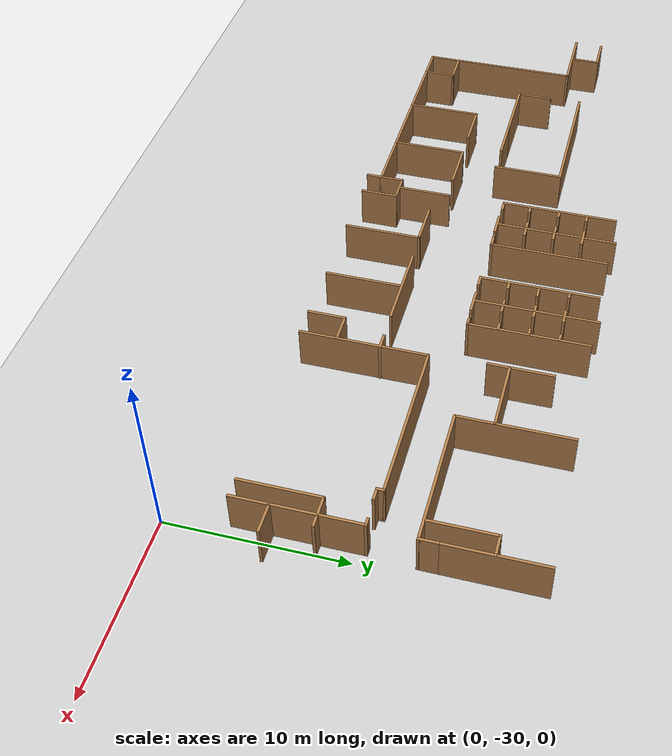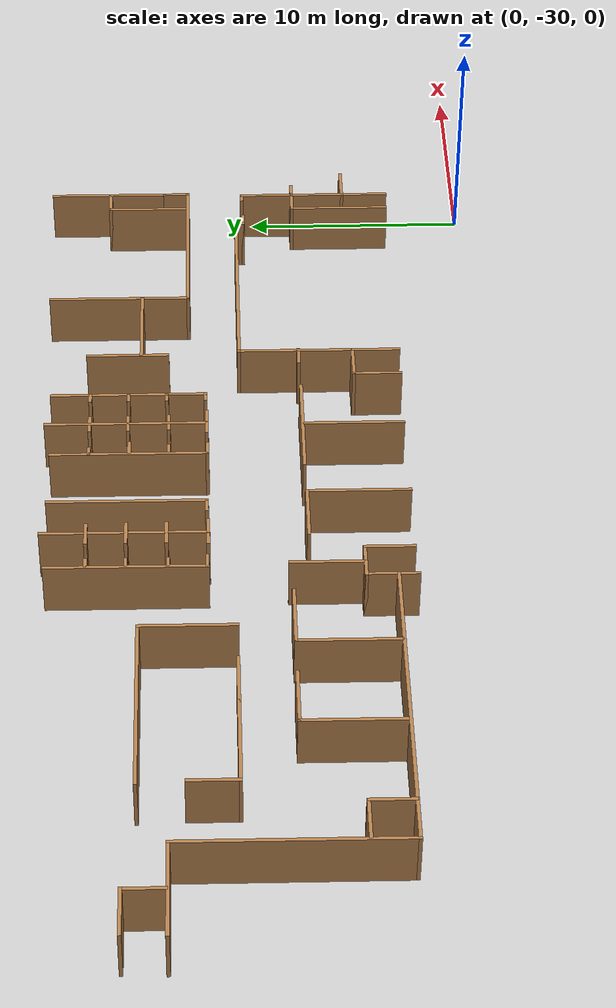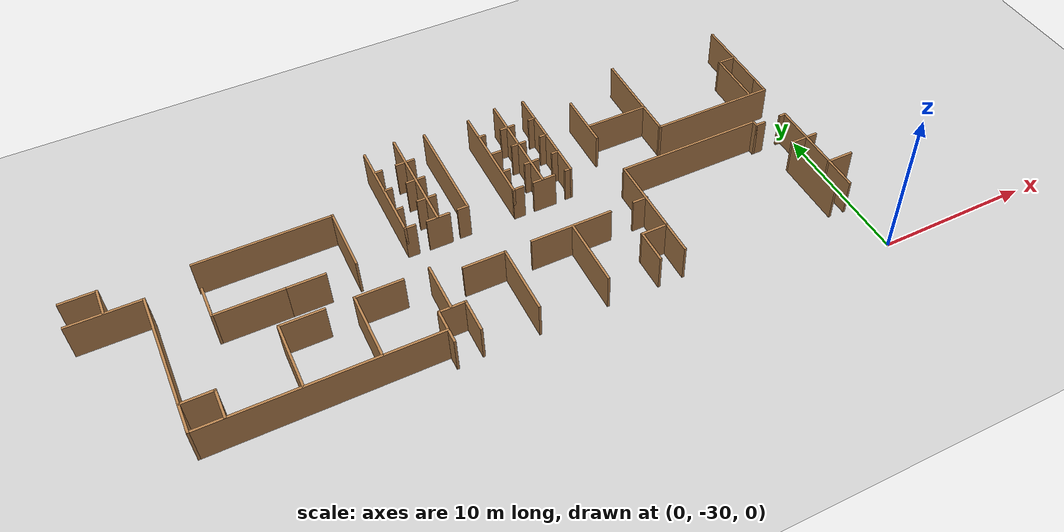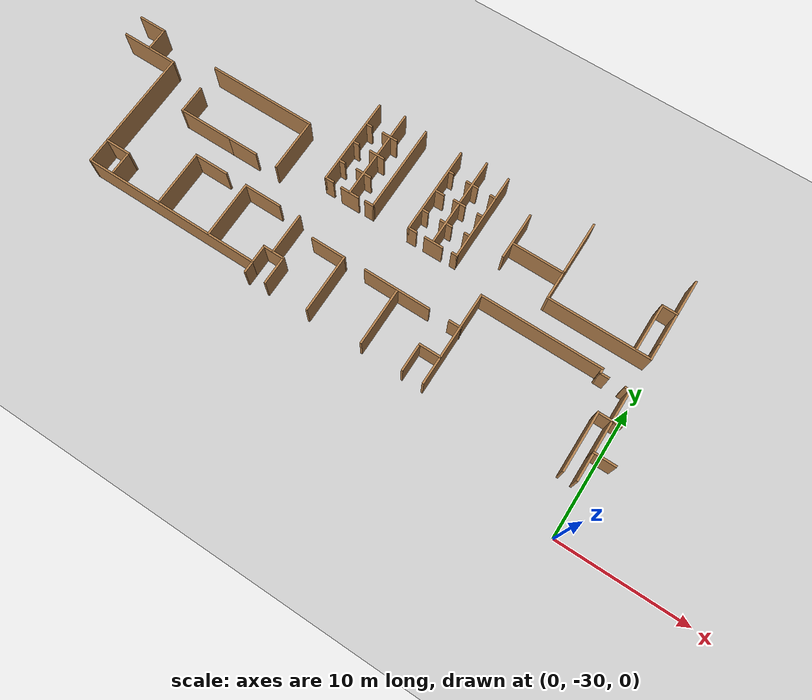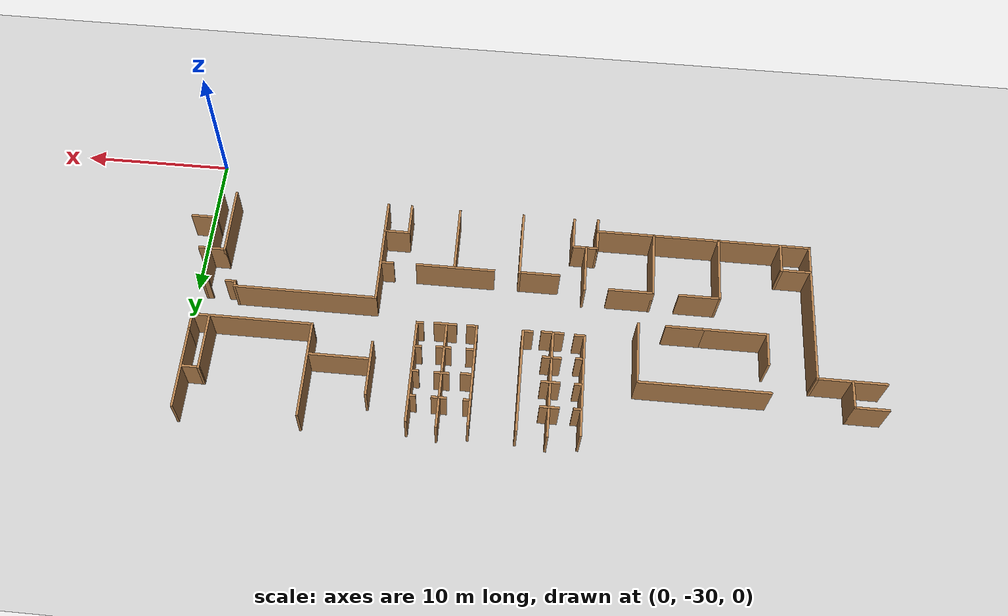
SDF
<sdf version="1.6">
 <world name="default">
  <model name="ground_plane">
   <static>1</static>
   <link name="link">
    <collision name="collision">
     <geometry><plane><normal>0 0 1</normal><size>100 100</size></plane></geometry>
     <surface><friction><ode><mu>100</mu><mu2>50</mu2></ode></friction></surface>
    </collision>
    <visual name="visual">
     <cast_shadows>0</cast_shadows>
     <geometry><plane><normal>0 0 1</normal><size>100 100</size></plane></geometry>
     <material>
      <script><uri>file://media/materials/scripts/gazebo.material</uri><name>Gazebo/Grey</name></script>
     </material>
    </visual>
   </link>
  </model>
  <model name="floor_plan">
   <link name="Wall_22">
    <collision name="Wall_22_Collision">
     <geometry><box><size>1 0.15 2.5</size></box></geometry>
     <pose>0 0 1.25 0 -0 0</pose>
    </collision>
    <visual name="Wall_22_Visual">
     <pose>0 0 1.25 0 -0 0</pose>
     <geometry><box><size>1 0.15 2.5</size></box></geometry>
     <material>
      <script><uri>file://media/materials/scripts/gazebo.material</uri><name>Gazebo/Wood</name></script>
      <ambient>1 1 1 1</ambient>
     </material>
    </visual>
    <pose>-26.55 -26.0536 0 0 -0 1.5708</pose>
   </link>
   <link name="Wall_23">
    <collision name="Wall_23_Collision">
     <geometry><box><size>14.25 0.15 2.5</size></box></geometry>
     <pose>0 0 1.25 0 -0 0</pose>
    </collision>
    <visual name="Wall_23_Visual">
     <pose>0 0 1.25 0 -0 0</pose>
     <geometry><box><size>14.25 0.15 2.5</size></box></geometry>
     <material>
      <script><uri>file://media/materials/scripts/gazebo.material</uri><name>Gazebo/Wood</name></script>
      <ambient>1 1 1 1</ambient>
     </material>
    </visual>
    <pose>-33.6 -25.6286 0 0 -0 3.14159</pose>
   </link>
   <link name="Wall_24">
    <collision name="Wall_24_Collision">
     <geometry><box><size>9.75 0.15 2.5</size></box></geometry>
     <pose>0 0 1.25 0 -0 0</pose>
    </collision>
    <visual name="Wall_24_Visual">
     <pose>0 0 1.25 0 -0 0</pose>
     <geometry><box><size>9.75 0.15 2.5</size></box></geometry>
     <material>
      <script><uri>file://media/materials/scripts/gazebo.material</uri><name>Gazebo/Wood</name></script>
      <ambient>1 1 1 1</ambient>
     </material>
    </visual>
    <pose>-40.65 -20.8286 0 0 -0 1.5708</pose>
   </link>
   <link name="Wall_25">
    <collision name="Wall_25_Collision">
     <geometry><box><size>4.5 0.15 2.5</size></box></geometry>
     <pose>0 0 1.25 0 -0 0</pose>
    </collision>
    <visual name="Wall_25_Visual">
     <pose>0 0 1.25 0 -0 0</pose>
     <geometry><box><size>4.5 0.15 2.5</size></box></geometry>
     <material>
      <script><uri>file://media/materials/scripts/gazebo.material</uri><name>Gazebo/Wood</name></script>
      <ambient>1 1 1 1</ambient>
     </material>
    </visual>
    <pose>-42.825 -16.0286 0 0 -0 3.14159</pose>
   </link>
   <link name="Wall_308">
    <collision name="Wall_308_Collision">
     <geometry><box><size>1.75 0.15 2.5</size></box></geometry>
     <pose>0 0 1.25 0 -0 0</pose>
    </collision>
    <visual name="Wall_308_Visual">
     <pose>0 0 1.25 0 -0 0</pose>
     <geometry><box><size>1.75 0.15 2.5</size></box></geometry>
     <material>
      <script><uri>file://media/materials/scripts/gazebo.material</uri><name>Gazebo/Wood</name></script>
      <ambient>1 1 1 1</ambient>
     </material>
    </visual>
    <pose>0.097617 -24.3355 0 0 -0 3.14159</pose>
   </link>
   <link name="Wall_309">
    <collision name="Wall_309_Collision">
     <geometry><box><size>2.25 0.15 2.5</size></box></geometry>
     <pose>0 0 1.25 0 -0 0</pose>
    </collision>
    <visual name="Wall_309_Visual">
     <pose>0 0 1.25 0 -0 0</pose>
     <geometry><box><size>2.25 0.15 2.5</size></box></geometry>
     <material>
      <script><uri>file://media/materials/scripts/gazebo.material</uri><name>Gazebo/Wood</name></script>
      <ambient>1 1 1 1</ambient>
     </material>
    </visual>
    <pose>-0.702384 -25.3855 0 0 0 -1.5708</pose>
   </link>
   <link name="Wall_311">
    <collision name="Wall_311_Collision">
     <geometry><box><size>5 0.15 2.5</size></box></geometry>
     <pose>0 0 1.25 0 -0 0</pose>
    </collision>
    <visual name="Wall_311_Visual">
     <pose>0 0 1.25 0 -0 0</pose>
     <geometry><box><size>5 0.15 2.5</size></box></geometry>
     <material>
      <script><uri>file://media/materials/scripts/gazebo.material</uri><name>Gazebo/Wood</name></script>
      <ambient>1 1 1 1</ambient>
     </material>
    </visual>
    <pose>-0.702384 -21.9105 0 0 -0 1.5708</pose>
   </link>
   <link name="Wall_312">
    <collision name="Wall_312_Collision">
     <geometry><box><size>0.5 0.15 2.5</size></box></geometry>
     <pose>0 0 1.25 0 -0 0</pose>
    </collision>
    <visual name="Wall_312_Visual">
     <pose>0 0 1.25 0 -0 0</pose>
     <geometry><box><size>0.5 0.15 2.5</size></box></geometry>
     <material>
      <script><uri>file://media/materials/scripts/gazebo.material</uri><name>Gazebo/Wood</name></script>
      <ambient>1 1 1 1</ambient>
     </material>
    </visual>
    <pose>-0.877383 -19.4855 0 0 -0 3.14159</pose>
   </link>
   <link name="Wall_314">
    <collision name="Wall_314_Collision">
     <geometry><box><size>0.75 0.15 2.5</size></box></geometry>
     <pose>0 0 1.25 0 -0 0</pose>
    </collision>
    <visual name="Wall_314_Visual">
     <pose>0 0 1.25 0 -0 0</pose>
     <geometry><box><size>0.75 0.15 2.5</size></box></geometry>
     <material>
      <script><uri>file://media/materials/scripts/gazebo.material</uri><name>Gazebo/Wood</name></script>
      <ambient>1 1 1 1</ambient>
     </material>
    </visual>
    <pose>-2.59679 -19.5326 0 0 -0 3.14159</pose>
   </link>
   <link name="Wall_315">
    <collision name="Wall_315_Collision">
     <geometry><box><size>0.5 0.15 2.5</size></box></geometry>
     <pose>0 0 1.25 0 -0 0</pose>
    </collision>
    <visual name="Wall_315_Visual">
     <pose>0 0 1.25 0 -0 0</pose>
     <geometry><box><size>0.5 0.15 2.5</size></box></geometry>
     <material>
      <script><uri>file://media/materials/scripts/gazebo.material</uri><name>Gazebo/Wood</name></script>
      <ambient>1 1 1 1</ambient>
     </material>
    </visual>
    <pose>-2.89679 -19.3576 0 0 -0 1.5708</pose>
   </link>
   <link name="Wall_316">
    <collision name="Wall_316_Collision">
     <geometry><box><size>9.5 0.15 2.5</size></box></geometry>
     <pose>0 0 1.25 0 -0 0</pose>
    </collision>
    <visual name="Wall_316_Visual">
     <pose>0 0 1.25 0 -0 0</pose>
     <geometry><box><size>9.5 0.15 2.5</size></box></geometry>
     <material>
      <script><uri>file://media/materials/scripts/gazebo.material</uri><name>Gazebo/Wood</name></script>
      <ambient>1 1 1 1</ambient>
     </material>
    </visual>
    <pose>-7.57179 -19.1826 0 0 -0 3.14159</pose>
   </link>
   <link name="Wall_317">
    <collision name="Wall_317_Collision">
     <geometry><box><size>7.4 0.15 2.5</size></box></geometry>
     <pose>0 0 1.25 0 -0 0</pose>
    </collision>
    <visual name="Wall_317_Visual">
     <pose>0 0 1.25 0 -0 0</pose>
     <geometry><box><size>7.4 0.15 2.5</size></box></geometry>
     <material>
      <script><uri>file://media/materials/scripts/gazebo.material</uri><name>Gazebo/Wood</name></script>
      <ambient>1 1 1 1</ambient>
     </material>
    </visual>
    <pose>-12.2468 -22.8076 0 0 0 -1.5708</pose>
   </link>
   <link name="Wall_319">
    <collision name="Wall_319_Collision">
     <geometry><box><size>0.75 0.15 2.5</size></box></geometry>
     <pose>0 0 1.25 0 -0 0</pose>
    </collision>
    <visual name="Wall_319_Visual">
     <pose>0 0 1.25 0 -0 0</pose>
     <geometry><box><size>0.75 0.15 2.5</size></box></geometry>
     <material>
      <script><uri>file://media/materials/scripts/gazebo.material</uri><name>Gazebo/Wood</name></script>
      <ambient>1 1 1 1</ambient>
     </material>
    </visual>
    <pose>-0.344509 -21.9009 0 0 -0 0</pose>
   </link>
   <link name="Wall_321">
    <collision name="Wall_321_Collision">
     <geometry><box><size>1.75 0.15 2.5</size></box></geometry>
     <pose>0 0 1.25 0 -0 0</pose>
    </collision>
    <visual name="Wall_321_Visual">
     <pose>0 0 1.25 0 -0 0</pose>
     <geometry><box><size>1.75 0.15 2.5</size></box></geometry>
     <material>
      <script><uri>file://media/materials/scripts/gazebo.material</uri><name>Gazebo/Wood</name></script>
      <ambient>1 1 1 1</ambient>
     </material>
    </visual>
    <pose>-13.0655 -24.3426 0 0 -0 3.14159</pose>
   </link>
   <link name="Wall_322">
    <collision name="Wall_322_Collision">
     <geometry><box><size>2.25 0.15 2.5</size></box></geometry>
     <pose>0 0 1.25 0 -0 0</pose>
    </collision>
    <visual name="Wall_322_Visual">
     <pose>0 0 1.25 0 -0 0</pose>
     <geometry><box><size>2.25 0.15 2.5</size></box></geometry>
     <material>
      <script><uri>file://media/materials/scripts/gazebo.material</uri><name>Gazebo/Wood</name></script>
      <ambient>1 1 1 1</ambient>
     </material>
    </visual>
    <pose>-13.8655 -25.3926 0 0 0 -1.5708</pose>
   </link>
   <link name="Wall_324">
    <collision name="Wall_324_Collision">
     <geometry><box><size>1 0.15 2.5</size></box></geometry>
     <pose>0 0 1.25 0 -0 0</pose>
    </collision>
    <visual name="Wall_324_Visual">
     <pose>0 0 1.25 0 -0 0</pose>
     <geometry><box><size>1 0.15 2.5</size></box></geometry>
     <material>
      <script><uri>file://media/materials/scripts/gazebo.material</uri><name>Gazebo/Wood</name></script>
      <ambient>1 1 1 1</ambient>
     </material>
    </visual>
    <pose>-12.6354 -21.8825 0 0 -0 3.14159</pose>
   </link>
   <link name="Wall_326">
    <collision name="Wall_326_Collision">
     <geometry><box><size>5.25 0.15 2.5</size></box></geometry>
     <pose>0 0 1.25 0 -0 0</pose>
    </collision>
    <visual name="Wall_326_Visual">
     <pose>0 0 1.25 0 -0 0</pose>
     <geometry><box><size>5.25 0.15 2.5</size></box></geometry>
     <material>
      <script><uri>file://media/materials/scripts/gazebo.material</uri><name>Gazebo/Wood</name></script>
      <ambient>1 1 1 1</ambient>
     </material>
    </visual>
    <pose>-17.2389 -21.9193 0 0 -0 3.14159</pose>
   </link>
   <link name="Wall_330">
    <collision name="Wall_330_Collision">
     <geometry><box><size>4.5 0.15 2.5</size></box></geometry>
     <pose>0 0 1.25 0 -0 0</pose>
    </collision>
    <visual name="Wall_330_Visual">
     <pose>0 0 1.25 0 -0 0</pose>
     <geometry><box><size>4.5 0.15 2.5</size></box></geometry>
     <material>
      <script><uri>file://media/materials/scripts/gazebo.material</uri><name>Gazebo/Wood</name></script>
      <ambient>1 1 1 1</ambient>
     </material>
    </visual>
    <pose>-17.1673 -24.191 0 0 0 -1.5708</pose>
   </link>
   <link name="Wall_334">
    <collision name="Wall_334_Collision">
     <geometry><box><size>4.6 0.15 2.5</size></box></geometry>
     <pose>0 0 1.25 0 -0 0</pose>
    </collision>
    <visual name="Wall_334_Visual">
     <pose>0 0 1.25 0 -0 0</pose>
     <geometry><box><size>4.6 0.15 2.5</size></box></geometry>
     <material>
      <script><uri>file://media/materials/scripts/gazebo.material</uri><name>Gazebo/Wood</name></script>
      <ambient>1 1 1 1</ambient>
     </material>
    </visual>
    <pose>-21.4986 -24.1906 0 0 -0 1.5708</pose>
   </link>
   <link name="Wall_336">
    <collision name="Wall_336_Collision">
     <geometry><box><size>2.75 0.15 2.5</size></box></geometry>
     <pose>0 0 1.25 0 -0 0</pose>
    </collision>
    <visual name="Wall_336_Visual">
     <pose>0 0 1.25 0 -0 0</pose>
     <geometry><box><size>2.75 0.15 2.5</size></box></geometry>
     <material>
      <script><uri>file://media/materials/scripts/gazebo.material</uri><name>Gazebo/Wood</name></script>
      <ambient>1 1 1 1</ambient>
     </material>
    </visual>
    <pose>-22.7986 -21.9656 0 0 -0 3.14159</pose>
   </link>
   <link name="Wall_338">
    <collision name="Wall_338_Collision">
     <geometry><box><size>1.5 0.15 2.5</size></box></geometry>
     <pose>0 0 1.25 0 -0 0</pose>
    </collision>
    <visual name="Wall_338_Visual">
     <pose>0 0 1.25 0 -0 0</pose>
     <geometry><box><size>1.5 0.15 2.5</size></box></geometry>
     <material>
      <script><uri>file://media/materials/scripts/gazebo.material</uri><name>Gazebo/Wood</name></script>
      <ambient>1 1 1 1</ambient>
     </material>
    </visual>
    <pose>-26.55 -24.9536 0 0 -0 1.5708</pose>
   </link>
   <link name="Wall_339">
    <collision name="Wall_339_Collision">
     <geometry><box><size>1.75 0.15 2.5</size></box></geometry>
     <pose>0 0 1.25 0 -0 0</pose>
    </collision>
    <visual name="Wall_339_Visual">
     <pose>0 0 1.25 0 -0 0</pose>
     <geometry><box><size>1.75 0.15 2.5</size></box></geometry>
     <material>
      <script><uri>file://media/materials/scripts/gazebo.material</uri><name>Gazebo/Wood</name></script>
      <ambient>1 1 1 1</ambient>
     </material>
    </visual>
    <pose>-25.75 -24.2786 0 0 -0 0</pose>
   </link>
   <link name="Wall_340">
    <collision name="Wall_340_Collision">
     <geometry><box><size>2.25 0.15 2.5</size></box></geometry>
     <pose>0 0 1.25 0 -0 0</pose>
    </collision>
    <visual name="Wall_340_Visual">
     <pose>0 0 1.25 0 -0 0</pose>
     <geometry><box><size>2.25 0.15 2.5</size></box></geometry>
     <material>
      <script><uri>file://media/materials/scripts/gazebo.material</uri><name>Gazebo/Wood</name></script>
      <ambient>1 1 1 1</ambient>
     </material>
    </visual>
    <pose>-24.95 -25.3286 0 0 0 -1.5708</pose>
   </link>
   <link name="Wall_342">
    <collision name="Wall_342_Collision">
     <geometry><box><size>3.25 0.15 2.5</size></box></geometry>
     <pose>0 0 1.25 0 -0 0</pose>
    </collision>
    <visual name="Wall_342_Visual">
     <pose>0 0 1.25 0 -0 0</pose>
     <geometry><box><size>3.25 0.15 2.5</size></box></geometry>
     <material>
      <script><uri>file://media/materials/scripts/gazebo.material</uri><name>Gazebo/Wood</name></script>
      <ambient>1 1 1 1</ambient>
     </material>
    </visual>
    <pose>-25.8158 -22.6722 0 0 -0 1.5708</pose>
   </link>
   <link name="Wall_345">
    <collision name="Wall_345_Collision">
     <geometry><box><size>4.5 0.15 2.5</size></box></geometry>
     <pose>0 0 1.25 0 -0 0</pose>
    </collision>
    <visual name="Wall_345_Visual">
     <pose>0 0 1.25 0 -0 0</pose>
     <geometry><box><size>4.5 0.15 2.5</size></box></geometry>
     <material>
      <script><uri>file://media/materials/scripts/gazebo.material</uri><name>Gazebo/Wood</name></script>
      <ambient>1 1 1 1</ambient>
     </material>
    </visual>
    <pose>-30.2996 -23.3938 0 0 -0 1.5708</pose>
   </link>
   <link name="Wall_346">
    <collision name="Wall_346_Collision">
     <geometry><box><size>3 0.15 2.5</size></box></geometry>
     <pose>0 0 1.25 0 -0 0</pose>
    </collision>
    <visual name="Wall_346_Visual">
     <pose>0 0 1.25 0 -0 0</pose>
     <geometry><box><size>3 0.15 2.5</size></box></geometry>
     <material>
      <script><uri>file://media/materials/scripts/gazebo.material</uri><name>Gazebo/Wood</name></script>
      <ambient>1 1 1 1</ambient>
     </material>
    </visual>
    <pose>-28.8746 -21.2188 0 0 -0 0</pose>
   </link>
   <link name="Wall_348">
    <collision name="Wall_348_Collision">
     <geometry><box><size>4.5 0.15 2.5</size></box></geometry>
     <pose>0 0 1.25 0 -0 0</pose>
    </collision>
    <visual name="Wall_348_Visual">
     <pose>0 0 1.25 0 -0 0</pose>
     <geometry><box><size>4.5 0.15 2.5</size></box></geometry>
     <material>
      <script><uri>file://media/materials/scripts/gazebo.material</uri><name>Gazebo/Wood</name></script>
      <ambient>1 1 1 1</ambient>
     </material>
    </visual>
    <pose>-34.6308 -23.3938 0 0 -0 1.5708</pose>
   </link>
   <link name="Wall_349">
    <collision name="Wall_349_Collision">
     <geometry><box><size>2.75 0.15 2.5</size></box></geometry>
     <pose>0 0 1.25 0 -0 0</pose>
    </collision>
    <visual name="Wall_349_Visual">
     <pose>0 0 1.25 0 -0 0</pose>
     <geometry><box><size>2.75 0.15 2.5</size></box></geometry>
     <material>
      <script><uri>file://media/materials/scripts/gazebo.material</uri><name>Gazebo/Wood</name></script>
      <ambient>1 1 1 1</ambient>
     </material>
    </visual>
    <pose>-33.3308 -21.2188 0 0 -0 0</pose>
   </link>
   <link name="Wall_351">
    <collision name="Wall_351_Collision">
     <geometry><box><size>2 0.15 2.5</size></box></geometry>
     <pose>0 0 1.25 0 -0 0</pose>
    </collision>
    <visual name="Wall_351_Visual">
     <pose>0 0 1.25 0 -0 0</pose>
     <geometry><box><size>2 0.15 2.5</size></box></geometry>
     <material>
      <script><uri>file://media/materials/scripts/gazebo.material</uri><name>Gazebo/Wood</name></script>
      <ambient>1 1 1 1</ambient>
     </material>
    </visual>
    <pose>-38.7398 -24.6715 0 0 -0 1.5708</pose>
   </link>
   <link name="Wall_352">
    <collision name="Wall_352_Collision">
     <geometry><box><size>2 0.15 2.5</size></box></geometry>
     <pose>0 0 1.25 0 -0 0</pose>
    </collision>
    <visual name="Wall_352_Visual">
     <pose>0 0 1.25 0 -0 0</pose>
     <geometry><box><size>2 0.15 2.5</size></box></geometry>
     <material>
      <script><uri>file://media/materials/scripts/gazebo.material</uri><name>Gazebo/Wood</name></script>
      <ambient>1 1 1 1</ambient>
     </material>
    </visual>
    <pose>-39.6648 -23.7465 0 0 -0 3.14159</pose>
   </link>
   <link name="Wall_508">
    <collision name="Wall_508_Collision">
     <geometry><box><size>1.25 0.15 2.5</size></box></geometry>
     <pose>0 0 1.25 0 -0 0</pose>
    </collision>
    <visual name="Wall_508_Visual">
     <pose>0 0 1.25 0 -0 0</pose>
     <geometry><box><size>1.25 0.15 2.5</size></box></geometry>
     <material>
      <script><uri>file://media/materials/scripts/gazebo.material</uri><name>Gazebo/Wood</name></script>
      <ambient>1 1 1 1</ambient>
     </material>
    </visual>
    <pose>-0.561019 -16.3285 0 0 0 -1.5708</pose>
   </link>
   <link name="Wall_509">
    <collision name="Wall_509_Collision">
     <geometry><box><size>8 0.15 2.5</size></box></geometry>
     <pose>0 0 1.25 0 -0 0</pose>
    </collision>
    <visual name="Wall_509_Visual">
     <pose>0 0 1.25 0 -0 0</pose>
     <geometry><box><size>8 0.15 2.5</size></box></geometry>
     <material>
      <script><uri>file://media/materials/scripts/gazebo.material</uri><name>Gazebo/Wood</name></script>
      <ambient>1 1 1 1</ambient>
     </material>
    </visual>
    <pose>-4.48602 -16.8785 0 0 -0 3.14159</pose>
   </link>
   <link name="Wall_510">
    <collision name="Wall_510_Collision">
     <geometry><box><size>6.5 0.15 2.5</size></box></geometry>
     <pose>0 0 1.25 0 -0 0</pose>
    </collision>
    <visual name="Wall_510_Visual">
     <pose>0 0 1.25 0 -0 0</pose>
     <geometry><box><size>6.5 0.15 2.5</size></box></geometry>
     <material>
      <script><uri>file://media/materials/scripts/gazebo.material</uri><name>Gazebo/Wood</name></script>
      <ambient>1 1 1 1</ambient>
     </material>
    </visual>
    <pose>-8.41102 -13.7035 0 0 -0 1.5708</pose>
   </link>
   <link name="Wall_512">
    <collision name="Wall_512_Collision">
     <geometry><box><size>3.75 0.15 2.5</size></box></geometry>
     <pose>0 0 1.25 0 -0 0</pose>
    </collision>
    <visual name="Wall_512_Visual">
     <pose>0 0 1.25 0 -0 0</pose>
     <geometry><box><size>3.75 0.15 2.5</size></box></geometry>
     <material>
      <script><uri>file://media/materials/scripts/gazebo.material</uri><name>Gazebo/Wood</name></script>
      <ambient>1 1 1 1</ambient>
     </material>
    </visual>
    <pose>-12.449 -14.135 0 0 0 -1.5708</pose>
   </link>
   <link name="Wall_514">
    <collision name="Wall_514_Collision">
     <geometry><box><size>4.1 0.15 2.5</size></box></geometry>
     <pose>0 0 1.25 0 -0 0</pose>
    </collision>
    <visual name="Wall_514_Visual">
     <pose>0 0 1.25 0 -0 0</pose>
     <geometry><box><size>4.1 0.15 2.5</size></box></geometry>
     <material>
      <script><uri>file://media/materials/scripts/gazebo.material</uri><name>Gazebo/Wood</name></script>
      <ambient>1 1 1 1</ambient>
     </material>
    </visual>
    <pose>-10.4175 -14.7536 0 0 -0 3.14159</pose>
   </link>
   <link name="Wall_517">
    <collision name="Wall_517_Collision">
     <geometry><box><size>5.5 0.15 2.5</size></box></geometry>
     <pose>0 0 1.25 0 -0 0</pose>
    </collision>
    <visual name="Wall_517_Visual">
     <pose>0 0 1.25 0 -0 0</pose>
     <geometry><box><size>5.5 0.15 2.5</size></box></geometry>
     <material>
      <script><uri>file://media/materials/scripts/gazebo.material</uri><name>Gazebo/Wood</name></script>
      <ambient>1 1 1 1</ambient>
     </material>
    </visual>
    <pose>-0.561019 -13.1035 0 0 -0 1.5708</pose>
   </link>
   <link name="Wall_521">
    <collision name="Wall_521_Collision">
     <geometry><box><size>3.75 0.15 2.5</size></box></geometry>
     <pose>0 0 1.25 0 -0 0</pose>
    </collision>
    <visual name="Wall_521_Visual">
     <pose>0 0 1.25 0 -0 0</pose>
     <geometry><box><size>3.75 0.15 2.5</size></box></geometry>
     <material>
      <script><uri>file://media/materials/scripts/gazebo.material</uri><name>Gazebo/Wood</name></script>
      <ambient>1 1 1 1</ambient>
     </material>
    </visual>
    <pose>-1.68838 -14.9663 0 0 0 -1.5708</pose>
   </link>
   <link name="Wall_523">
    <collision name="Wall_523_Collision">
     <geometry><box><size>1.25 0.15 2.5</size></box></geometry>
     <pose>0 0 1.25 0 -0 0</pose>
    </collision>
    <visual name="Wall_523_Visual">
     <pose>0 0 1.25 0 -0 0</pose>
     <geometry><box><size>1.25 0.15 2.5</size></box></geometry>
     <material>
      <script><uri>file://media/materials/scripts/gazebo.material</uri><name>Gazebo/Wood</name></script>
      <ambient>1 1 1 1</ambient>
     </material>
    </visual>
    <pose>-1.13838 -13.1663 0 0 -0 0</pose>
   </link>
   <link name="Wall_713">
    <collision name="Wall_713_Collision">
     <geometry><box><size>2.25 0.15 2.5</size></box></geometry>
     <pose>0 0 1.25 0 -0 0</pose>
    </collision>
    <visual name="Wall_713_Visual">
     <pose>0 0 1.25 0 -0 0</pose>
     <geometry><box><size>2.25 0.15 2.5</size></box></geometry>
     <material>
      <script><uri>file://media/materials/scripts/gazebo.material</uri><name>Gazebo/Wood</name></script>
      <ambient>1 1 1 1</ambient>
     </material>
    </visual>
    <pose>-43.9051 -14.253 0 0 -0 0</pose>
   </link>
   <link name="Wall_714">
    <collision name="Wall_714_Collision">
     <geometry><box><size>1.85 0.15 2.5</size></box></geometry>
     <pose>0 0 1.25 0 -0 0</pose>
    </collision>
    <visual name="Wall_714_Visual">
     <pose>0 0 1.25 0 -0 0</pose>
     <geometry><box><size>1.85 0.15 2.5</size></box></geometry>
     <material>
      <script><uri>file://media/materials/scripts/gazebo.material</uri><name>Gazebo/Wood</name></script>
      <ambient>1 1 1 1</ambient>
     </material>
    </visual>
    <pose>-42.8551 -15.103 0 0 0 -1.5708</pose>
   </link>
   <link name="Wall_721">
    <collision name="Wall_721_Collision">
     <geometry><box><size>4.25 0.15 2.5</size></box></geometry>
     <pose>0 0 1.25 0 -0 0</pose>
    </collision>
    <visual name="Wall_721_Visual">
     <pose>0 0 1.25 0 -0 0</pose>
     <geometry><box><size>4.25 0.15 2.5</size></box></geometry>
     <material>
      <script><uri>file://media/materials/scripts/gazebo.material</uri><name>Gazebo/Wood</name></script>
      <ambient>1 1 1 1</ambient>
     </material>
    </visual>
    <pose>-35.5852 -18.8494 0 0 -0 3.14159</pose>
   </link>
   <link name="Wall_722">
    <collision name="Wall_722_Collision">
     <geometry><box><size>2.25 0.15 2.5</size></box></geometry>
     <pose>0 0 1.25 0 -0 0</pose>
    </collision>
    <visual name="Wall_722_Visual">
     <pose>0 0 1.25 0 -0 0</pose>
     <geometry><box><size>2.25 0.15 2.5</size></box></geometry>
     <material>
      <script><uri>file://media/materials/scripts/gazebo.material</uri><name>Gazebo/Wood</name></script>
      <ambient>1 1 1 1</ambient>
     </material>
    </visual>
    <pose>-37.6352 -17.7994 0 0 -0 1.5708</pose>
   </link>
   <link name="Wall_724">
    <collision name="Wall_724_Collision">
     <geometry><box><size>2.5 0.15 2.5</size></box></geometry>
     <pose>0 0 1.25 0 -0 0</pose>
    </collision>
    <visual name="Wall_724_Visual">
     <pose>0 0 1.25 0 -0 0</pose>
     <geometry><box><size>2.5 0.15 2.5</size></box></geometry>
     <material>
      <script><uri>file://media/materials/scripts/gazebo.material</uri><name>Gazebo/Wood</name></script>
      <ambient>1 1 1 1</ambient>
     </material>
    </visual>
    <pose>-32.3602 -18.8494 0 0 -0 0</pose>
   </link>
   <link name="Wall_726">
    <collision name="Wall_726_Collision">
     <geometry><box><size>8.5 0.15 2.5</size></box></geometry>
     <pose>0 0 1.25 0 -0 0</pose>
    </collision>
    <visual name="Wall_726_Visual">
     <pose>0 0 1.25 0 -0 0</pose>
     <geometry><box><size>8.5 0.15 2.5</size></box></geometry>
     <material>
      <script><uri>file://media/materials/scripts/gazebo.material</uri><name>Gazebo/Wood</name></script>
      <ambient>1 1 1 1</ambient>
     </material>
    </visual>
    <pose>-33.543 -14.7496 0 0 -0 0</pose>
   </link>
   <link name="Wall_742">
    <collision name="Wall_742_Collision">
     <geometry><box><size>4.25 0.15 2.5</size></box></geometry>
     <pose>0 0 1.25 0 -0 0</pose>
    </collision>
    <visual name="Wall_742_Visual">
     <pose>0 0 1.25 0 -0 0</pose>
     <geometry><box><size>4.25 0.15 2.5</size></box></geometry>
     <material>
      <script><uri>file://media/materials/scripts/gazebo.material</uri><name>Gazebo/Wood</name></script>
      <ambient>1 1 1 1</ambient>
     </material>
    </visual>
    <pose>-29.368 -16.7996 0 0 0 -1.5708</pose>
   </link>
   <link name="Wall_748">
    <collision name="Wall_748_Collision">
     <geometry><box><size>7.25 0.15 2.5</size></box></geometry>
     <pose>0 0 1.25 0 -0 0</pose>
    </collision>
    <visual name="Wall_748_Visual">
     <pose>0 0 1.25 0 -0 0</pose>
     <geometry><box><size>7.25 0.15 2.5</size></box></geometry>
     <material>
      <script><uri>file://media/materials/scripts/gazebo.material</uri><name>Gazebo/Wood</name></script>
      <ambient>1 1 1 1</ambient>
     </material>
    </visual>
    <pose>-23.9172 -14.1152 0 0 0 -1.5708</pose>
   </link>
   <link name="Wall_750">
    <collision name="Wall_750_Collision">
     <geometry><box><size>7.25 0.15 2.5</size></box></geometry>
     <pose>0 0 1.25 0 -0 0</pose>
    </collision>
    <visual name="Wall_750_Visual">
     <pose>0 0 1.25 0 -0 0</pose>
     <geometry><box><size>7.25 0.15 2.5</size></box></geometry>
     <material>
      <script><uri>file://media/materials/scripts/gazebo.material</uri><name>Gazebo/Wood</name></script>
      <ambient>1 1 1 1</ambient>
     </material>
    </visual>
    <pose>-17.0527 -14.1152 0 0 0 -1.5708</pose>
   </link>
   <link name="Wall_752">
    <collision name="Wall_752_Collision">
     <geometry><box><size>1.25 0.15 2.5</size></box></geometry>
     <pose>0 0 1.25 0 -0 0</pose>
    </collision>
    <visual name="Wall_752_Visual">
     <pose>0 0 1.25 0 -0 0</pose>
     <geometry><box><size>1.25 0.15 2.5</size></box></geometry>
     <material>
      <script><uri>file://media/materials/scripts/gazebo.material</uri><name>Gazebo/Wood</name></script>
      <ambient>1 1 1 1</ambient>
     </material>
    </visual>
    <pose>-1.19451 -21.9009 0 0 -0 3.14159</pose>
   </link>
   <link name="Wall_755">
    <collision name="Wall_755_Collision">
     <geometry><box><size>4.65 0.15 2.5</size></box></geometry>
     <pose>0 0 1.25 0 -0 0</pose>
    </collision>
    <visual name="Wall_755_Visual">
     <pose>0 0 1.25 0 -0 0</pose>
     <geometry><box><size>4.65 0.15 2.5</size></box></geometry>
     <material>
      <script><uri>file://media/materials/scripts/gazebo.material</uri><name>Gazebo/Wood</name></script>
      <ambient>1 1 1 1</ambient>
     </material>
    </visual>
    <pose>-1.74451 -24.1509 0 0 0 -1.5708</pose>
   </link>
   <link name="Wall_757">
    <collision name="Wall_757_Collision">
     <geometry><box><size>0.75 0.15 2.5</size></box></geometry>
     <pose>0 0 1.25 0 -0 0</pose>
    </collision>
    <visual name="Wall_757_Visual">
     <pose>0 0 1.25 0 -0 0</pose>
     <geometry><box><size>0.75 0.15 2.5</size></box></geometry>
     <material>
      <script><uri>file://media/materials/scripts/gazebo.material</uri><name>Gazebo/Wood</name></script>
      <ambient>1 1 1 1</ambient>
     </material>
    </visual>
    <pose>-18.7067 -17.6956 0 0 -0 3.14159</pose>
   </link>
   <link name="Wall_758">
    <collision name="Wall_758_Collision">
     <geometry><box><size>7 0.15 2.5</size></box></geometry>
     <pose>0 0 1.25 0 -0 0</pose>
    </collision>
    <visual name="Wall_758_Visual">
     <pose>0 0 1.25 0 -0 0</pose>
     <geometry><box><size>7 0.15 2.5</size></box></geometry>
     <material>
      <script><uri>file://media/materials/scripts/gazebo.material</uri><name>Gazebo/Wood</name></script>
      <ambient>1 1 1 1</ambient>
     </material>
    </visual>
    <pose>-19.0067 -14.2706 0 0 -0 1.5708</pose>
   </link>
   <link name="Wall_764">
    <collision name="Wall_764_Collision">
     <geometry><box><size>7 0.15 2.5</size></box></geometry>
     <pose>0 0 1.25 0 -0 0</pose>
    </collision>
    <visual name="Wall_764_Visual">
     <pose>0 0 1.25 0 -0 0</pose>
     <geometry><box><size>7 0.15 2.5</size></box></geometry>
     <material>
      <script><uri>file://media/materials/scripts/gazebo.material</uri><name>Gazebo/Wood</name></script>
      <ambient>1 1 1 1</ambient>
     </material>
    </visual>
    <pose>-15.1386 -14.2037 0 0 0 -1.5708</pose>
   </link>
   <link name="Wall_765">
    <collision name="Wall_765_Collision">
     <geometry><box><size>0.5 0.15 2.5</size></box></geometry>
     <pose>0 0 1.25 0 -0 0</pose>
    </collision>
    <visual name="Wall_765_Visual">
     <pose>0 0 1.25 0 -0 0</pose>
     <geometry><box><size>0.5 0.15 2.5</size></box></geometry>
     <material>
      <script><uri>file://media/materials/scripts/gazebo.material</uri><name>Gazebo/Wood</name></script>
      <ambient>1 1 1 1</ambient>
     </material>
    </visual>
    <pose>-15.3136 -17.6287 0 0 -0 3.14159</pose>
   </link>
   <link name="Wall_767">
    <collision name="Wall_767_Collision">
     <geometry><box><size>1 0.15 2.5</size></box></geometry>
     <pose>0 0 1.25 0 -0 0</pose>
    </collision>
    <visual name="Wall_767_Visual">
     <pose>0 0 1.25 0 -0 0</pose>
     <geometry><box><size>1 0.15 2.5</size></box></geometry>
     <material>
      <script><uri>file://media/materials/scripts/gazebo.material</uri><name>Gazebo/Wood</name></script>
      <ambient>1 1 1 1</ambient>
     </material>
    </visual>
    <pose>-17.045 -12.508 0 0 -0 0</pose>
   </link>
   <link name="Wall_769">
    <collision name="Wall_769_Collision">
     <geometry><box><size>1 0.15 2.5</size></box></geometry>
     <pose>0 0 1.25 0 -0 0</pose>
    </collision>
    <visual name="Wall_769_Visual">
     <pose>0 0 1.25 0 -0 0</pose>
     <geometry><box><size>1 0.15 2.5</size></box></geometry>
     <material>
      <script><uri>file://media/materials/scripts/gazebo.material</uri><name>Gazebo/Wood</name></script>
      <ambient>1 1 1 1</ambient>
     </material>
    </visual>
    <pose>-17.045 -14.2012 0 0 -0 0</pose>
   </link>
   <link name="Wall_771">
    <collision name="Wall_771_Collision">
     <geometry><box><size>1 0.15 2.5</size></box></geometry>
     <pose>0 0 1.25 0 -0 0</pose>
    </collision>
    <visual name="Wall_771_Visual">
     <pose>0 0 1.25 0 -0 0</pose>
     <geometry><box><size>1 0.15 2.5</size></box></geometry>
     <material>
      <script><uri>file://media/materials/scripts/gazebo.material</uri><name>Gazebo/Wood</name></script>
      <ambient>1 1 1 1</ambient>
     </material>
    </visual>
    <pose>-17.009 -16.0024 0 0 -0 0</pose>
   </link>
   <link name="Wall_773">
    <collision name="Wall_773_Collision">
     <geometry><box><size>0.5 0.15 2.5</size></box></geometry>
     <pose>0 0 1.25 0 -0 0</pose>
    </collision>
    <visual name="Wall_773_Visual">
     <pose>0 0 1.25 0 -0 0</pose>
     <geometry><box><size>0.5 0.15 2.5</size></box></geometry>
     <material>
      <script><uri>file://media/materials/scripts/gazebo.material</uri><name>Gazebo/Wood</name></script>
      <ambient>1 1 1 1</ambient>
     </material>
    </visual>
    <pose>-18.8081 -12.508 0 0 -0 0</pose>
   </link>
   <link name="Wall_775">
    <collision name="Wall_775_Collision">
     <geometry><box><size>0.75 0.15 2.5</size></box></geometry>
     <pose>0 0 1.25 0 -0 0</pose>
    </collision>
    <visual name="Wall_775_Visual">
     <pose>0 0 1.25 0 -0 0</pose>
     <geometry><box><size>0.75 0.15 2.5</size></box></geometry>
     <material>
      <script><uri>file://media/materials/scripts/gazebo.material</uri><name>Gazebo/Wood</name></script>
      <ambient>1 1 1 1</ambient>
     </material>
    </visual>
    <pose>-18.611 -14.2732 0 0 -0 0</pose>
   </link>
   <link name="Wall_777">
    <collision name="Wall_777_Collision">
     <geometry><box><size>0.5 0.15 2.5</size></box></geometry>
     <pose>0 0 1.25 0 -0 0</pose>
    </collision>
    <visual name="Wall_777_Visual">
     <pose>0 0 1.25 0 -0 0</pose>
     <geometry><box><size>0.5 0.15 2.5</size></box></geometry>
     <material>
      <script><uri>file://media/materials/scripts/gazebo.material</uri><name>Gazebo/Wood</name></script>
      <ambient>1 1 1 1</ambient>
     </material>
    </visual>
    <pose>-18.7 -16.0024 0 0 -0 0</pose>
   </link>
   <link name="Wall_779">
    <collision name="Wall_779_Collision">
     <geometry><box><size>1.5 0.15 2.5</size></box></geometry>
     <pose>0 0 1.25 0 -0 0</pose>
    </collision>
    <visual name="Wall_779_Visual">
     <pose>0 0 1.25 0 -0 0</pose>
     <geometry><box><size>1.5 0.15 2.5</size></box></geometry>
     <material>
      <script><uri>file://media/materials/scripts/gazebo.material</uri><name>Gazebo/Wood</name></script>
      <ambient>1 1 1 1</ambient>
     </material>
    </visual>
    <pose>-16.9727 -17.6833 0 0 -0 0</pose>
   </link>
   <link name="Wall_781">
    <collision name="Wall_781_Collision">
     <geometry><box><size>0.5 0.15 2.5</size></box></geometry>
     <pose>0 0 1.25 0 -0 0</pose>
    </collision>
    <visual name="Wall_781_Visual">
     <pose>0 0 1.25 0 -0 0</pose>
     <geometry><box><size>0.5 0.15 2.5</size></box></geometry>
     <material>
      <script><uri>file://media/materials/scripts/gazebo.material</uri><name>Gazebo/Wood</name></script>
      <ambient>1 1 1 1</ambient>
     </material>
    </visual>
    <pose>-15.3439 -12.5008 0 0 -0 3.14159</pose>
   </link>
   <link name="Wall_783">
    <collision name="Wall_783_Collision">
     <geometry><box><size>0.5 0.15 2.5</size></box></geometry>
     <pose>0 0 1.25 0 -0 0</pose>
    </collision>
    <visual name="Wall_783_Visual">
     <pose>0 0 1.25 0 -0 0</pose>
     <geometry><box><size>0.5 0.15 2.5</size></box></geometry>
     <material>
      <script><uri>file://media/materials/scripts/gazebo.material</uri><name>Gazebo/Wood</name></script>
      <ambient>1 1 1 1</ambient>
     </material>
    </visual>
    <pose>-15.3643 -14.2034 0 0 -0 3.14159</pose>
   </link>
   <link name="Wall_785">
    <collision name="Wall_785_Collision">
     <geometry><box><size>0.5 0.15 2.5</size></box></geometry>
     <pose>0 0 1.25 0 -0 0</pose>
    </collision>
    <visual name="Wall_785_Visual">
     <pose>0 0 1.25 0 -0 0</pose>
     <geometry><box><size>0.5 0.15 2.5</size></box></geometry>
     <material>
      <script><uri>file://media/materials/scripts/gazebo.material</uri><name>Gazebo/Wood</name></script>
      <ambient>1 1 1 1</ambient>
     </material>
    </visual>
    <pose>-15.3575 -15.9195 0 0 -0 3.14159</pose>
   </link>
   <link name="Wall_788">
    <collision name="Wall_788_Collision">
     <geometry><box><size>7 0.15 2.5</size></box></geometry>
     <pose>0 0 1.25 0 -0 0</pose>
    </collision>
    <visual name="Wall_788_Visual">
     <pose>0 0 1.25 0 -0 0</pose>
     <geometry><box><size>7 0.15 2.5</size></box></geometry>
     <material>
      <script><uri>file://media/materials/scripts/gazebo.material</uri><name>Gazebo/Wood</name></script>
      <ambient>1 1 1 1</ambient>
     </material>
    </visual>
    <pose>-25.95 -14.2275 0 0 0 -1.5708</pose>
   </link>
   <link name="Wall_789">
    <collision name="Wall_789_Collision">
     <geometry><box><size>0.75 0.15 2.5</size></box></geometry>
     <pose>0 0 1.25 0 -0 0</pose>
    </collision>
    <visual name="Wall_789_Visual">
     <pose>0 0 1.25 0 -0 0</pose>
     <geometry><box><size>0.75 0.15 2.5</size></box></geometry>
     <material>
      <script><uri>file://media/materials/scripts/gazebo.material</uri><name>Gazebo/Wood</name></script>
      <ambient>1 1 1 1</ambient>
     </material>
    </visual>
    <pose>-25.65 -17.6525 0 0 -0 0</pose>
   </link>
   <link name="Wall_792">
    <collision name="Wall_792_Collision">
     <geometry><box><size>7 0.15 2.5</size></box></geometry>
     <pose>0 0 1.25 0 -0 0</pose>
    </collision>
    <visual name="Wall_792_Visual">
     <pose>0 0 1.25 0 -0 0</pose>
     <geometry><box><size>7 0.15 2.5</size></box></geometry>
     <material>
      <script><uri>file://media/materials/scripts/gazebo.material</uri><name>Gazebo/Wood</name></script>
      <ambient>1 1 1 1</ambient>
     </material>
    </visual>
    <pose>-21.9933 -14.2275 0 0 0 -1.5708</pose>
   </link>
   <link name="Wall_793">
    <collision name="Wall_793_Collision">
     <geometry><box><size>0.75 0.15 2.5</size></box></geometry>
     <pose>0 0 1.25 0 -0 0</pose>
    </collision>
    <visual name="Wall_793_Visual">
     <pose>0 0 1.25 0 -0 0</pose>
     <geometry><box><size>0.75 0.15 2.5</size></box></geometry>
     <material>
      <script><uri>file://media/materials/scripts/gazebo.material</uri><name>Gazebo/Wood</name></script>
      <ambient>1 1 1 1</ambient>
     </material>
    </visual>
    <pose>-22.2933 -17.6525 0 0 -0 3.14159</pose>
   </link>
   <link name="Wall_795">
    <collision name="Wall_795_Collision">
     <geometry><box><size>1.5 0.15 2.5</size></box></geometry>
     <pose>0 0 1.25 0 -0 0</pose>
    </collision>
    <visual name="Wall_795_Visual">
     <pose>0 0 1.25 0 -0 0</pose>
     <geometry><box><size>1.5 0.15 2.5</size></box></geometry>
     <material>
      <script><uri>file://media/materials/scripts/gazebo.material</uri><name>Gazebo/Wood</name></script>
      <ambient>1 1 1 1</ambient>
     </material>
    </visual>
    <pose>-23.8919 -17.6943 0 0 -0 0</pose>
   </link>
   <link name="Wall_797">
    <collision name="Wall_797_Collision">
     <geometry><box><size>0.5 0.15 2.5</size></box></geometry>
     <pose>0 0 1.25 0 -0 0</pose>
    </collision>
    <visual name="Wall_797_Visual">
     <pose>0 0 1.25 0 -0 0</pose>
     <geometry><box><size>0.5 0.15 2.5</size></box></geometry>
     <material>
      <script><uri>file://media/materials/scripts/gazebo.material</uri><name>Gazebo/Wood</name></script>
      <ambient>1 1 1 1</ambient>
     </material>
    </visual>
    <pose>-25.6763 -16.0027 0 0 -0 0</pose>
   </link>
   <link name="Wall_799">
    <collision name="Wall_799_Collision">
     <geometry><box><size>0.5 0.15 2.5</size></box></geometry>
     <pose>0 0 1.25 0 -0 0</pose>
    </collision>
    <visual name="Wall_799_Visual">
     <pose>0 0 1.25 0 -0 0</pose>
     <geometry><box><size>0.5 0.15 2.5</size></box></geometry>
     <material>
      <script><uri>file://media/materials/scripts/gazebo.material</uri><name>Gazebo/Wood</name></script>
      <ambient>1 1 1 1</ambient>
     </material>
    </visual>
    <pose>-25.6763 -14.2171 0 0 -0 0</pose>
   </link>
   <link name="Wall_801">
    <collision name="Wall_801_Collision">
     <geometry><box><size>0.5 0.15 2.5</size></box></geometry>
     <pose>0 0 1.25 0 -0 0</pose>
    </collision>
    <visual name="Wall_801_Visual">
     <pose>0 0 1.25 0 -0 0</pose>
     <geometry><box><size>0.5 0.15 2.5</size></box></geometry>
     <material>
      <script><uri>file://media/materials/scripts/gazebo.material</uri><name>Gazebo/Wood</name></script>
      <ambient>1 1 1 1</ambient>
     </material>
    </visual>
    <pose>-25.6763 -12.5255 0 0 -0 0</pose>
   </link>
   <link name="Wall_805">
    <collision name="Wall_805_Collision">
     <geometry><box><size>1.25 0.15 2.5</size></box></geometry>
     <pose>0 0 1.25 0 -0 0</pose>
    </collision>
    <visual name="Wall_805_Visual">
     <pose>0 0 1.25 0 -0 0</pose>
     <geometry><box><size>1.25 0.15 2.5</size></box></geometry>
     <material>
      <script><uri>file://media/materials/scripts/gazebo.material</uri><name>Gazebo/Wood</name></script>
      <ambient>1 1 1 1</ambient>
     </material>
    </visual>
    <pose>-23.9542 -12.4941 0 0 -0 0</pose>
   </link>
   <link name="Wall_807">
    <collision name="Wall_807_Collision">
     <geometry><box><size>1.25 0.15 2.5</size></box></geometry>
     <pose>0 0 1.25 0 -0 0</pose>
    </collision>
    <visual name="Wall_807_Visual">
     <pose>0 0 1.25 0 -0 0</pose>
     <geometry><box><size>1.25 0.15 2.5</size></box></geometry>
     <material>
      <script><uri>file://media/materials/scripts/gazebo.material</uri><name>Gazebo/Wood</name></script>
      <ambient>1 1 1 1</ambient>
     </material>
    </visual>
    <pose>-23.9386 -14.2014 0 0 -0 0</pose>
   </link>
   <link name="Wall_809">
    <collision name="Wall_809_Collision">
     <geometry><box><size>1.25 0.15 2.5</size></box></geometry>
     <pose>0 0 1.25 0 -0 0</pose>
    </collision>
    <visual name="Wall_809_Visual">
     <pose>0 0 1.25 0 -0 0</pose>
     <geometry><box><size>1.25 0.15 2.5</size></box></geometry>
     <material>
      <script><uri>file://media/materials/scripts/gazebo.material</uri><name>Gazebo/Wood</name></script>
      <ambient>1 1 1 1</ambient>
     </material>
    </visual>
    <pose>-23.9229 -15.9244 0 0 -0 0</pose>
   </link>
   <static>1</static>
  </model>
 </world>
</sdf>
